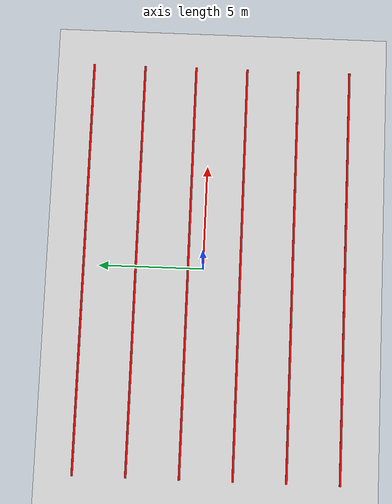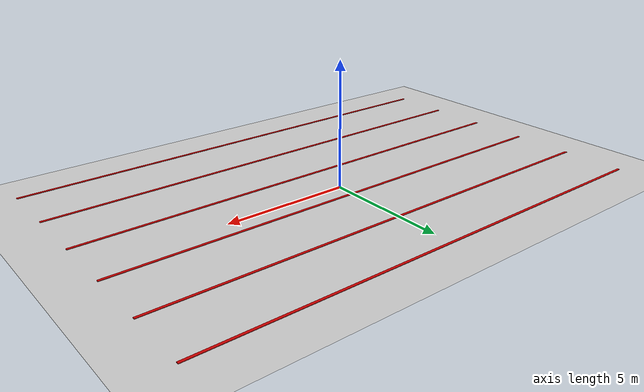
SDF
<sdf version="1.7">
 <world name="default">
  <model name="ground_plane">
   <static>1</static>
   <link name="link">
    <collision name="collision">
     <geometry><plane><normal>0 0 1</normal><size>100 100</size></plane></geometry>
     <surface><friction><ode><mu>100</mu><mu2>50</mu2></ode></friction></surface>
    </collision>
    <visual name="visual">
     <cast_shadows>0</cast_shadows>
     <geometry><plane><normal>0 0 1</normal><size>100 100</size></plane></geometry>
     <material>
      <script><uri>file://media/materials/scripts/gazebo.material</uri><name>Gazebo/Grey</name></script>
     </material>
    </visual>
   </link>
  </model>
  <model name="redlines.world">
   <link name="link_2">
    <inertial>
     <mass>10</mass>
     <inertia><ixx>1.66667</ixx><ixy>0</ixy><ixz>0</ixz><iyy>1.66667</iyy><iyz>0</iyz><izz>1.66667</izz></inertia>
    </inertial>
    <pose>0 -1.25 0 0 -0 0</pose>
    <kinematic>1</kinematic>
    <visual name="visual">
     <geometry><box><size>20 0.1 0.02</size></box></geometry>
     <material>
      <lighting>1</lighting>
      <script><uri>file://media/materials/scripts/gazebo.material</uri><name>Gazebo/Grey</name></script>
      <shader type="pixel"><normal_map>__default__</normal_map></shader>
      <ambient>0.8 0 0 1</ambient>
      <diffuse>0.8 0 0 1</diffuse>
      <specular>0.8 0 0 1</specular>
      <emissive>0.8 0 0 1</emissive>
     </material>
    </visual>
    <collision name="collision">
     <geometry><box><size>20 0.1 0.02</size></box></geometry>
     <surface>
      <friction>
       <ode><mu>1</mu><mu2>1</mu2><fdir1>0 0 0</fdir1><slip1>0</slip1><slip2>0</slip2></ode>
       <torsional>
        <coefficient>1</coefficient>
        <patch_radius>0</patch_radius>
        <surface_radius>0</surface_radius>
        <use_patch_radius>1</use_patch_radius>
        <ode><slip>0</slip></ode>
       </torsional>
      </friction>
      <bounce><restitution_coefficient>0</restitution_coefficient><threshold>1e+06</threshold></bounce>
      <contact>
       <collide_without_contact>0</collide_without_contact>
       <collide_without_contact_bitmask>1</collide_without_contact_bitmask>
       <collide_bitmask>1</collide_bitmask>
       <ode>
        <soft_cfm>0</soft_cfm>
        <soft_erp>0.2</soft_erp>
        <kp>1e+13</kp>
        <kd>1</kd>
        <max_vel>0.01</max_vel>
        <min_depth>0</min_depth>
       </ode>
       <bullet>
        <split_impulse>1</split_impulse>
        <split_impulse_penetration_threshold>-0.01</split_impulse_penetration_threshold>
        <soft_cfm>0</soft_cfm>
        <soft_erp>0.2</soft_erp>
        <kp>1e+13</kp>
        <kd>1</kd>
       </bullet>
      </contact>
     </surface>
    </collision>
   </link>
   <link name="link_2_clone">
    <inertial>
     <mass>10</mass>
     <inertia><ixx>1.66667</ixx><ixy>0</ixy><ixz>0</ixz><iyy>1.66667</iyy><iyz>0</iyz><izz>1.66667</izz></inertia>
    </inertial>
    <pose>0 -3.75 0 0 -0 0</pose>
    <kinematic>1</kinematic>
    <visual name="visual">
     <geometry><box><size>20 0.1 0.02</size></box></geometry>
     <material>
      <lighting>1</lighting>
      <script><uri>file://media/materials/scripts/gazebo.material</uri><name>Gazebo/Grey</name></script>
      <shader type="pixel"><normal_map>__default__</normal_map></shader>
      <ambient>0.8 0 0 1</ambient>
      <diffuse>0.8 0 0 1</diffuse>
      <specular>0.8 0 0 1</specular>
      <emissive>0.8 0 0 1</emissive>
     </material>
    </visual>
    <collision name="collision">
     <geometry><box><size>20 0.1 0.02</size></box></geometry>
     <surface>
      <friction>
       <ode><mu>1</mu><mu2>1</mu2><fdir1>0 0 0</fdir1><slip1>0</slip1><slip2>0</slip2></ode>
       <torsional>
        <coefficient>1</coefficient>
        <patch_radius>0</patch_radius>
        <surface_radius>0</surface_radius>
        <use_patch_radius>1</use_patch_radius>
        <ode><slip>0</slip></ode>
       </torsional>
      </friction>
      <bounce><restitution_coefficient>0</restitution_coefficient><threshold>1e+06</threshold></bounce>
      <contact>
       <collide_without_contact>0</collide_without_contact>
       <collide_without_contact_bitmask>1</collide_without_contact_bitmask>
       <collide_bitmask>1</collide_bitmask>
       <ode>
        <soft_cfm>0</soft_cfm>
        <soft_erp>0.2</soft_erp>
        <kp>1e+13</kp>
        <kd>1</kd>
        <max_vel>0.01</max_vel>
        <min_depth>0</min_depth>
       </ode>
       <bullet>
        <split_impulse>1</split_impulse>
        <split_impulse_penetration_threshold>-0.01</split_impulse_penetration_threshold>
        <soft_cfm>0</soft_cfm>
        <soft_erp>0.2</soft_erp>
        <kp>1e+13</kp>
        <kd>1</kd>
       </bullet>
      </contact>
     </surface>
    </collision>
   </link>
   <link name="link_2_clone_0">
    <inertial>
     <mass>10</mass>
     <inertia><ixx>1.66667</ixx><ixy>0</ixy><ixz>0</ixz><iyy>1.66667</iyy><iyz>0</iyz><izz>1.66667</izz></inertia>
    </inertial>
    <pose>0 -6.25 0 0 -0 0</pose>
    <kinematic>1</kinematic>
    <visual name="visual">
     <geometry><box><size>20 0.1 0.02</size></box></geometry>
     <material>
      <lighting>1</lighting>
      <script><uri>file://media/materials/scripts/gazebo.material</uri><name>Gazebo/Grey</name></script>
      <shader type="pixel"><normal_map>__default__</normal_map></shader>
      <ambient>0.8 0 0 1</ambient>
      <diffuse>0.8 0 0 1</diffuse>
      <specular>0.8 0 0 1</specular>
      <emissive>0.8 0 0 1</emissive>
     </material>
    </visual>
    <collision name="collision">
     <geometry><box><size>20 0.1 0.02</size></box></geometry>
     <surface>
      <friction>
       <ode><mu>1</mu><mu2>1</mu2><fdir1>0 0 0</fdir1><slip1>0</slip1><slip2>0</slip2></ode>
       <torsional>
        <coefficient>1</coefficient>
        <patch_radius>0</patch_radius>
        <surface_radius>0</surface_radius>
        <use_patch_radius>1</use_patch_radius>
        <ode><slip>0</slip></ode>
       </torsional>
      </friction>
      <bounce><restitution_coefficient>0</restitution_coefficient><threshold>1e+06</threshold></bounce>
      <contact>
       <collide_without_contact>0</collide_without_contact>
       <collide_without_contact_bitmask>1</collide_without_contact_bitmask>
       <collide_bitmask>1</collide_bitmask>
       <ode>
        <soft_cfm>0</soft_cfm>
        <soft_erp>0.2</soft_erp>
        <kp>1e+13</kp>
        <kd>1</kd>
        <max_vel>0.01</max_vel>
        <min_depth>0</min_depth>
       </ode>
       <bullet>
        <split_impulse>1</split_impulse>
        <split_impulse_penetration_threshold>-0.01</split_impulse_penetration_threshold>
        <soft_cfm>0</soft_cfm>
        <soft_erp>0.2</soft_erp>
        <kp>1e+13</kp>
        <kd>1</kd>
       </bullet>
      </contact>
     </surface>
    </collision>
   </link>
   <link name="link_2_clone_1">
    <inertial>
     <mass>10</mass>
     <inertia><ixx>1.66667</ixx><ixy>0</ixy><ixz>0</ixz><iyy>1.66667</iyy><iyz>0</iyz><izz>1.66667</izz></inertia>
    </inertial>
    <pose>0 1.25 0 0 -0 0</pose>
    <kinematic>1</kinematic>
    <visual name="visual">
     <geometry><box><size>20 0.1 0.02</size></box></geometry>
     <material>
      <lighting>1</lighting>
      <script><uri>file://media/materials/scripts/gazebo.material</uri><name>Gazebo/Grey</name></script>
      <shader type="pixel"><normal_map>__default__</normal_map></shader>
      <ambient>0.8 0 0 1</ambient>
      <diffuse>0.8 0 0 1</diffuse>
      <specular>0.8 0 0 1</specular>
      <emissive>0.8 0 0 1</emissive>
     </material>
    </visual>
    <collision name="collision">
     <geometry><box><size>20 0.1 0.02</size></box></geometry>
     <surface>
      <friction>
       <ode><mu>1</mu><mu2>1</mu2><fdir1>0 0 0</fdir1><slip1>0</slip1><slip2>0</slip2></ode>
       <torsional>
        <coefficient>1</coefficient>
        <patch_radius>0</patch_radius>
        <surface_radius>0</surface_radius>
        <use_patch_radius>1</use_patch_radius>
        <ode><slip>0</slip></ode>
       </torsional>
      </friction>
      <bounce><restitution_coefficient>0</restitution_coefficient><threshold>1e+06</threshold></bounce>
      <contact>
       <collide_without_contact>0</collide_without_contact>
       <collide_without_contact_bitmask>1</collide_without_contact_bitmask>
       <collide_bitmask>1</collide_bitmask>
       <ode>
        <soft_cfm>0</soft_cfm>
        <soft_erp>0.2</soft_erp>
        <kp>1e+13</kp>
        <kd>1</kd>
        <max_vel>0.01</max_vel>
        <min_depth>0</min_depth>
       </ode>
       <bullet>
        <split_impulse>1</split_impulse>
        <split_impulse_penetration_threshold>-0.01</split_impulse_penetration_threshold>
        <soft_cfm>0</soft_cfm>
        <soft_erp>0.2</soft_erp>
        <kp>1e+13</kp>
        <kd>1</kd>
       </bullet>
      </contact>
     </surface>
    </collision>
   </link>
   <link name="link_2_clone_2">
    <inertial>
     <mass>10</mass>
     <inertia><ixx>1.66667</ixx><ixy>0</ixy><ixz>0</ixz><iyy>1.66667</iyy><iyz>0</iyz><izz>1.66667</izz></inertia>
    </inertial>
    <pose>0 3.75 0 0 -0 0</pose>
    <kinematic>1</kinematic>
    <visual name="visual">
     <geometry><box><size>20 0.1 0.02</size></box></geometry>
     <material>
      <lighting>1</lighting>
      <script><uri>file://media/materials/scripts/gazebo.material</uri><name>Gazebo/Grey</name></script>
      <shader type="pixel"><normal_map>__default__</normal_map></shader>
      <ambient>0.8 0 0 1</ambient>
      <diffuse>0.8 0 0 1</diffuse>
      <specular>0.8 0 0 1</specular>
      <emissive>0.8 0 0 1</emissive>
     </material>
    </visual>
    <collision name="collision">
     <geometry><box><size>20 0.1 0.02</size></box></geometry>
     <surface>
      <friction>
       <ode><mu>1</mu><mu2>1</mu2><fdir1>0 0 0</fdir1><slip1>0</slip1><slip2>0</slip2></ode>
       <torsional>
        <coefficient>1</coefficient>
        <patch_radius>0</patch_radius>
        <surface_radius>0</surface_radius>
        <use_patch_radius>1</use_patch_radius>
        <ode><slip>0</slip></ode>
       </torsional>
      </friction>
      <bounce><restitution_coefficient>0</restitution_coefficient><threshold>1e+06</threshold></bounce>
      <contact>
       <collide_without_contact>0</collide_without_contact>
       <collide_without_contact_bitmask>1</collide_without_contact_bitmask>
       <collide_bitmask>1</collide_bitmask>
       <ode>
        <soft_cfm>0</soft_cfm>
        <soft_erp>0.2</soft_erp>
        <kp>1e+13</kp>
        <kd>1</kd>
        <max_vel>0.01</max_vel>
        <min_depth>0</min_depth>
       </ode>
       <bullet>
        <split_impulse>1</split_impulse>
        <split_impulse_penetration_threshold>-0.01</split_impulse_penetration_threshold>
        <soft_cfm>0</soft_cfm>
        <soft_erp>0.2</soft_erp>
        <kp>1e+13</kp>
        <kd>1</kd>
       </bullet>
      </contact>
     </surface>
    </collision>
   </link>
   <link name="link_2_clone_3">
    <inertial>
     <mass>10</mass>
     <inertia><ixx>1.66667</ixx><ixy>0</ixy><ixz>0</ixz><iyy>1.66667</iyy><iyz>0</iyz><izz>1.66667</izz></inertia>
    </inertial>
    <pose>0 6.25 0 0 -0 0</pose>
    <kinematic>1</kinematic>
    <visual name="visual">
     <geometry><box><size>20 0.1 0.02</size></box></geometry>
     <material>
      <lighting>1</lighting>
      <script><uri>file://media/materials/scripts/gazebo.material</uri><name>Gazebo/Grey</name></script>
      <shader type="pixel"><normal_map>__default__</normal_map></shader>
      <ambient>0.8 0 0 1</ambient>
      <diffuse>0.8 0 0 1</diffuse>
      <specular>0.8 0 0 1</specular>
      <emissive>0.8 0 0 1</emissive>
     </material>
    </visual>
    <collision name="collision">
     <geometry><box><size>20 0.1 0.02</size></box></geometry>
     <surface>
      <friction>
       <ode><mu>1</mu><mu2>1</mu2><fdir1>0 0 0</fdir1><slip1>0</slip1><slip2>0</slip2></ode>
       <torsional>
        <coefficient>1</coefficient>
        <patch_radius>0</patch_radius>
        <surface_radius>0</surface_radius>
        <use_patch_radius>1</use_patch_radius>
        <ode><slip>0</slip></ode>
       </torsional>
      </friction>
      <bounce><restitution_coefficient>0</restitution_coefficient><threshold>1e+06</threshold></bounce>
      <contact>
       <collide_without_contact>0</collide_without_contact>
       <collide_without_contact_bitmask>1</collide_without_contact_bitmask>
       <collide_bitmask>1</collide_bitmask>
       <ode>
        <soft_cfm>0</soft_cfm>
        <soft_erp>0.2</soft_erp>
        <kp>1e+13</kp>
        <kd>1</kd>
        <max_vel>0.01</max_vel>
        <min_depth>0</min_depth>
       </ode>
       <bullet>
        <split_impulse>1</split_impulse>
        <split_impulse_penetration_threshold>-0.01</split_impulse_penetration_threshold>
        <soft_cfm>0</soft_cfm>
        <soft_erp>0.2</soft_erp>
        <kp>1e+13</kp>
        <kd>1</kd>
       </bullet>
      </contact>
     </surface>
    </collision>
   </link>
   <static>0</static>
   <pose>0 -0.5 0 0 -0 0</pose>
  </model>
 </world>
</sdf>
